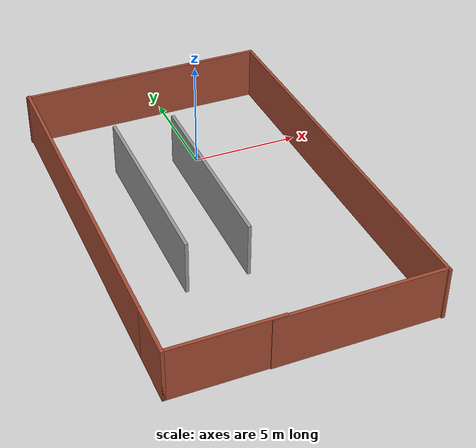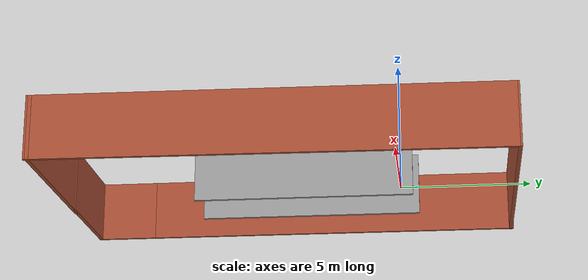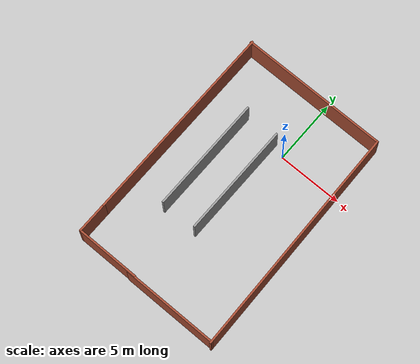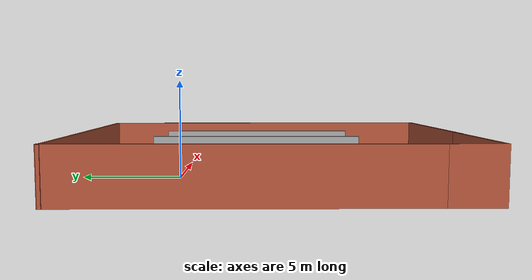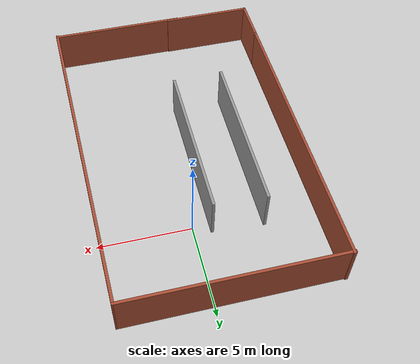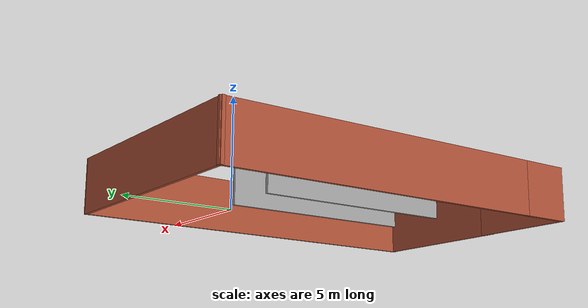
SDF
<?xml version='1.0'?>
<sdf version='1.7'>
  <model name='walls'>
    <pose>-0.796187 -4.53234 0 0 -0 0</pose>
    <link name='Wall_16'>
      <collision name='Wall_16_Collision'>
        <geometry>
          <box>
            <size>15.75 0.15 2.5</size>
          </box>
        </geometry>
        <pose>0 0 1.25 0 -0 0</pose>
      </collision>
      <visual name='Wall_16_Visual'>
        <pose>0 0 1.25 0 -0 0</pose>
        <geometry>
          <box>
            <size>15.75 0.15 2.5</size>
          </box>
        </geometry>
        <material>
          <script>
            <uri>file://media/materials/scripts/gazebo.material</uri>
            <name>Gazebo/Bricks</name>
          </script>
          <ambient>1 1 1 1</ambient>
        </material>
        <meta>
          <layer>0</layer>
        </meta>
      </visual>
      <pose>-5.81381 1.23234 0 0 -0 -1.5708</pose>
    </link>
    <link name='Wall_17'>
      <collision name='Wall_17_Collision'>
        <geometry>
          <box>
            <size>2.5 0.15 2.5</size>
          </box>
        </geometry>
        <pose>0 0 1.25 0 -0 0</pose>
      </collision>
      <visual name='Wall_17_Visual'>
        <pose>0 0 1.25 0 -0 0</pose>
        <geometry>
          <box>
            <size>2.5 0.15 2.5</size>
          </box>
        </geometry>
        <material>
          <script>
            <uri>file://media/materials/scripts/gazebo.material</uri>
            <name>Gazebo/Bricks</name>
          </script>
          <ambient>1 1 1 1</ambient>
        </material>
        <meta>
          <layer>0</layer>
        </meta>
      </visual>
      <pose>-5.81381 -7.74266 0 0 -0 -1.5708</pose>
    </link>
    <link name='Wall_18'>
      <collision name='Wall_18_Collision'>
        <geometry>
          <box>
            <size>5 0.15 2.5</size>
          </box>
        </geometry>
        <pose>0 0 1.25 0 -0 0</pose>
      </collision>
      <visual name='Wall_18_Visual'>
        <pose>0 0 1.25 0 -0 0</pose>
        <geometry>
          <box>
            <size>5 0.15 2.5</size>
          </box>
        </geometry>
        <material>
          <script>
            <uri>file://media/materials/scripts/gazebo.material</uri>
            <name>Gazebo/Bricks</name>
          </script>
          <ambient>1 1 1 1</ambient>
        </material>
        <meta>
          <layer>0</layer>
        </meta>
      </visual>
      <pose>-3.38881 -8.91766 0 0 -0 0</pose>
    </link>
    <link name='Wall_21'>
      <collision name='Wall_21_Collision'>
        <geometry>
          <box>
            <size>9 0.15 2.5</size>
          </box>
        </geometry>
        <pose>0 0 1.25 0 -0 0</pose>
      </collision>
      <visual name='Wall_21_Visual'>
        <pose>0 0 1.25 0 -0 0</pose>
        <geometry>
          <box>
            <size>9 0.15 2.5</size>
          </box>
        </geometry>
        <material>
          <script>
            <uri>file://media/materials/scripts/gazebo.material</uri>
            <name>Gazebo/Grey</name>
          </script>
          <ambient>1 1 1 1</ambient>
        </material>
        <meta>
          <layer>0</layer>
        </meta>
      </visual>
      <pose>-2.90034 0.662311 0 0 -0 -1.5708</pose>
    </link>
    <link name='Wall_23'>
      <collision name='Wall_23_Collision'>
        <geometry>
          <box>
            <size>8.75 0.15 2.5</size>
          </box>
        </geometry>
        <pose>0 0 1.25 0 -0 0</pose>
      </collision>
      <visual name='Wall_23_Visual'>
        <pose>0 0 1.25 0 -0 0</pose>
        <geometry>
          <box>
            <size>8.75 0.15 2.5</size>
          </box>
        </geometry>
        <material>
          <script>
            <uri>file://media/materials/scripts/gazebo.material</uri>
            <name>Gazebo/Grey</name>
          </script>
          <ambient>1 1 1 1</ambient>
        </material>
        <meta>
          <layer>0</layer>
        </meta>
      </visual>
      <pose>-0.155426 0.601216 0 0 -0 -1.5708</pose>
    </link>
    <link name='Wall_7'>
      <collision name='Wall_7_Collision'>
        <geometry>
          <box>
            <size>11.5 0.15 2.5</size>
          </box>
        </geometry>
        <pose>0 0 1.25 0 -0 0</pose>
      </collision>
      <visual name='Wall_7_Visual'>
        <pose>0 0 1.25 0 -0 0</pose>
        <geometry>
          <box>
            <size>11.5 0.15 2.5</size>
          </box>
        </geometry>
        <material>
          <script>
            <uri>file://media/materials/scripts/gazebo.material</uri>
            <name>Gazebo/Bricks</name>
          </script>
          <ambient>1 1 1 1</ambient>
        </material>
        <meta>
          <layer>0</layer>
        </meta>
      </visual>
      <pose>-0.188813 8.98234 0 0 -0 0</pose>
    </link>
    <link name='Wall_8'>
      <collision name='Wall_8_Collision'>
        <geometry>
          <box>
            <size>18.1671 0.15 2.5</size>
          </box>
        </geometry>
        <pose>0 0 1.25 0 -0 0</pose>
      </collision>
      <visual name='Wall_8_Visual'>
        <pose>0 0 1.25 0 -0 0</pose>
        <geometry>
          <box>
            <size>18.1671 0.15 2.5</size>
          </box>
        </geometry>
        <material>
          <script>
            <uri>file://media/materials/scripts/gazebo.material</uri>
            <name>Gazebo/Bricks</name>
          </script>
          <ambient>1 1 1 1</ambient>
        </material>
        <meta>
          <layer>0</layer>
        </meta>
      </visual>
      <pose>5.67422 -0.024226 0 0 -0 -1.54992</pose>
    </link>
    <link name='Wall_9'>
      <collision name='Wall_9_Collision'>
        <geometry>
          <box>
            <size>7.5 0.15 2.5</size>
          </box>
        </geometry>
        <pose>0 0 1.25 0 -0 0</pose>
      </collision>
      <visual name='Wall_9_Visual'>
        <pose>0 0 1.25 0 -0 0</pose>
        <geometry>
          <box>
            <size>7.5 0.15 2.5</size>
          </box>
        </geometry>
        <material>
          <script>
            <uri>file://media/materials/scripts/gazebo.material</uri>
            <name>Gazebo/Bricks</name>
          </script>
          <ambient>1 1 1 1</ambient>
        </material>
        <meta>
          <layer>0</layer>
        </meta>
      </visual>
      <pose>2.18726 -8.96003 0 0 -0 3.14159</pose>
    </link>
    <static>1</static>
  </model>
</sdf>
